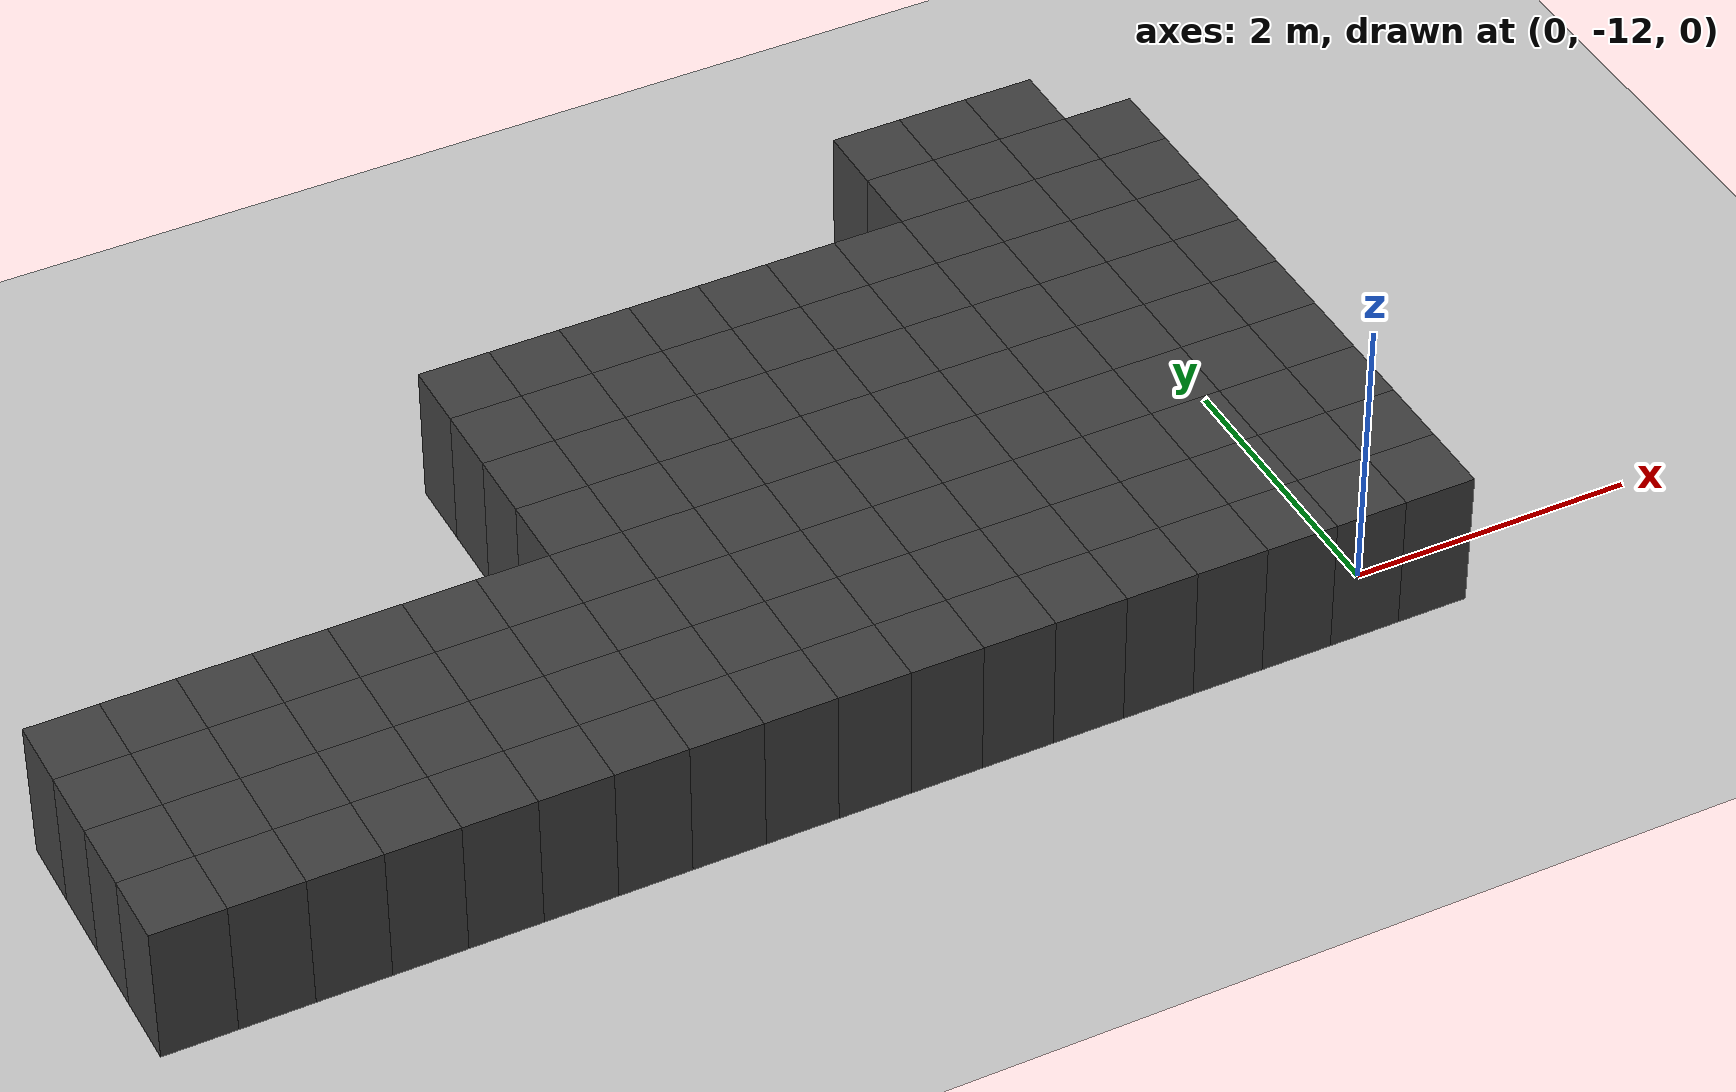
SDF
<sdf version="1.7">
 <world name="map_14668">
  <model name="ground_plane">
   <static>true</static>
   <link name="link">
    <collision name="collision">
     <geometry><plane><normal>0 0 1</normal><size>200 200</size></plane></geometry>
    </collision>
    <visual name="visual">
     <geometry><plane><normal>0 0 1</normal><size>200 200</size></plane></geometry>
     <material><ambient>0.8 0.8 0.8 1</ambient><diffuse>0.8 0.8 0.8 1</diffuse></material>
    </visual>
   </link>
  </model>
  <model name="maze_environment">
   <static>true</static>
   <link name="wall_1397">
    <pose>-1.250 -7.750 0.500 0 0 0</pose>
    <collision name="col"><geometry><box><size>0.5 0.5 1.0</size></box></geometry></collision>
    <visual name="vis">
     <geometry><box><size>0.5 0.5 1.0</size></box></geometry>
     <material><ambient>0.15 0.15 0.15 1</ambient><diffuse>0.25 0.25 0.25 1</diffuse></material>
    </visual>
   </link>
   <link name="wall_1398">
    <pose>-0.750 -7.750 0.500 0 0 0</pose>
    <collision name="col"><geometry><box><size>0.5 0.5 1.0</size></box></geometry></collision>
    <visual name="vis">
     <geometry><box><size>0.5 0.5 1.0</size></box></geometry>
     <material><ambient>0.15 0.15 0.15 1</ambient><diffuse>0.25 0.25 0.25 1</diffuse></material>
    </visual>
   </link>
   <link name="wall_1399">
    <pose>-0.250 -7.750 0.500 0 0 0</pose>
    <collision name="col"><geometry><box><size>0.5 0.5 1.0</size></box></geometry></collision>
    <visual name="vis">
     <geometry><box><size>0.5 0.5 1.0</size></box></geometry>
     <material><ambient>0.15 0.15 0.15 1</ambient><diffuse>0.25 0.25 0.25 1</diffuse></material>
    </visual>
   </link>
   <link name="wall_1422">
    <pose>-1.250 -8.250 0.500 0 0 0</pose>
    <collision name="col"><geometry><box><size>0.5 0.5 1.0</size></box></geometry></collision>
    <visual name="vis">
     <geometry><box><size>0.5 0.5 1.0</size></box></geometry>
     <material><ambient>0.15 0.15 0.15 1</ambient><diffuse>0.25 0.25 0.25 1</diffuse></material>
    </visual>
   </link>
   <link name="wall_1423">
    <pose>-0.750 -8.250 0.500 0 0 0</pose>
    <collision name="col"><geometry><box><size>0.5 0.5 1.0</size></box></geometry></collision>
    <visual name="vis">
     <geometry><box><size>0.5 0.5 1.0</size></box></geometry>
     <material><ambient>0.15 0.15 0.15 1</ambient><diffuse>0.25 0.25 0.25 1</diffuse></material>
    </visual>
   </link>
   <link name="wall_1424">
    <pose>-0.250 -8.250 0.500 0 0 0</pose>
    <collision name="col"><geometry><box><size>0.5 0.5 1.0</size></box></geometry></collision>
    <visual name="vis">
     <geometry><box><size>0.5 0.5 1.0</size></box></geometry>
     <material><ambient>0.15 0.15 0.15 1</ambient><diffuse>0.25 0.25 0.25 1</diffuse></material>
    </visual>
   </link>
   <link name="wall_1425">
    <pose>0.250 -8.250 0.500 0 0 0</pose>
    <collision name="col"><geometry><box><size>0.5 0.5 1.0</size></box></geometry></collision>
    <visual name="vis">
     <geometry><box><size>0.5 0.5 1.0</size></box></geometry>
     <material><ambient>0.15 0.15 0.15 1</ambient><diffuse>0.25 0.25 0.25 1</diffuse></material>
    </visual>
   </link>
   <link name="wall_1446">
    <pose>-4.750 -8.750 0.500 0 0 0</pose>
    <collision name="col"><geometry><box><size>0.5 0.5 1.0</size></box></geometry></collision>
    <visual name="vis">
     <geometry><box><size>0.5 0.5 1.0</size></box></geometry>
     <material><ambient>0.15 0.15 0.15 1</ambient><diffuse>0.25 0.25 0.25 1</diffuse></material>
    </visual>
   </link>
   <link name="wall_1447">
    <pose>-4.250 -8.750 0.500 0 0 0</pose>
    <collision name="col"><geometry><box><size>0.5 0.5 1.0</size></box></geometry></collision>
    <visual name="vis">
     <geometry><box><size>0.5 0.5 1.0</size></box></geometry>
     <material><ambient>0.15 0.15 0.15 1</ambient><diffuse>0.25 0.25 0.25 1</diffuse></material>
    </visual>
   </link>
   <link name="wall_1448">
    <pose>-3.750 -8.750 0.500 0 0 0</pose>
    <collision name="col"><geometry><box><size>0.5 0.5 1.0</size></box></geometry></collision>
    <visual name="vis">
     <geometry><box><size>0.5 0.5 1.0</size></box></geometry>
     <material><ambient>0.15 0.15 0.15 1</ambient><diffuse>0.25 0.25 0.25 1</diffuse></material>
    </visual>
   </link>
   <link name="wall_1449">
    <pose>-3.250 -8.750 0.500 0 0 0</pose>
    <collision name="col"><geometry><box><size>0.5 0.5 1.0</size></box></geometry></collision>
    <visual name="vis">
     <geometry><box><size>0.5 0.5 1.0</size></box></geometry>
     <material><ambient>0.15 0.15 0.15 1</ambient><diffuse>0.25 0.25 0.25 1</diffuse></material>
    </visual>
   </link>
   <link name="wall_1450">
    <pose>-2.750 -8.750 0.500 0 0 0</pose>
    <collision name="col"><geometry><box><size>0.5 0.5 1.0</size></box></geometry></collision>
    <visual name="vis">
     <geometry><box><size>0.5 0.5 1.0</size></box></geometry>
     <material><ambient>0.15 0.15 0.15 1</ambient><diffuse>0.25 0.25 0.25 1</diffuse></material>
    </visual>
   </link>
   <link name="wall_1451">
    <pose>-2.250 -8.750 0.500 0 0 0</pose>
    <collision name="col"><geometry><box><size>0.5 0.5 1.0</size></box></geometry></collision>
    <visual name="vis">
     <geometry><box><size>0.5 0.5 1.0</size></box></geometry>
     <material><ambient>0.15 0.15 0.15 1</ambient><diffuse>0.25 0.25 0.25 1</diffuse></material>
    </visual>
   </link>
   <link name="wall_1452">
    <pose>-1.750 -8.750 0.500 0 0 0</pose>
    <collision name="col"><geometry><box><size>0.5 0.5 1.0</size></box></geometry></collision>
    <visual name="vis">
     <geometry><box><size>0.5 0.5 1.0</size></box></geometry>
     <material><ambient>0.15 0.15 0.15 1</ambient><diffuse>0.25 0.25 0.25 1</diffuse></material>
    </visual>
   </link>
   <link name="wall_1453">
    <pose>-1.250 -8.750 0.500 0 0 0</pose>
    <collision name="col"><geometry><box><size>0.5 0.5 1.0</size></box></geometry></collision>
    <visual name="vis">
     <geometry><box><size>0.5 0.5 1.0</size></box></geometry>
     <material><ambient>0.15 0.15 0.15 1</ambient><diffuse>0.25 0.25 0.25 1</diffuse></material>
    </visual>
   </link>
   <link name="wall_1454">
    <pose>-0.750 -8.750 0.500 0 0 0</pose>
    <collision name="col"><geometry><box><size>0.5 0.5 1.0</size></box></geometry></collision>
    <visual name="vis">
     <geometry><box><size>0.5 0.5 1.0</size></box></geometry>
     <material><ambient>0.15 0.15 0.15 1</ambient><diffuse>0.25 0.25 0.25 1</diffuse></material>
    </visual>
   </link>
   <link name="wall_1455">
    <pose>-0.250 -8.750 0.500 0 0 0</pose>
    <collision name="col"><geometry><box><size>0.5 0.5 1.0</size></box></geometry></collision>
    <visual name="vis">
     <geometry><box><size>0.5 0.5 1.0</size></box></geometry>
     <material><ambient>0.15 0.15 0.15 1</ambient><diffuse>0.25 0.25 0.25 1</diffuse></material>
    </visual>
   </link>
   <link name="wall_1456">
    <pose>0.250 -8.750 0.500 0 0 0</pose>
    <collision name="col"><geometry><box><size>0.5 0.5 1.0</size></box></geometry></collision>
    <visual name="vis">
     <geometry><box><size>0.5 0.5 1.0</size></box></geometry>
     <material><ambient>0.15 0.15 0.15 1</ambient><diffuse>0.25 0.25 0.25 1</diffuse></material>
    </visual>
   </link>
   <link name="wall_1477">
    <pose>-4.750 -9.250 0.500 0 0 0</pose>
    <collision name="col"><geometry><box><size>0.5 0.5 1.0</size></box></geometry></collision>
    <visual name="vis">
     <geometry><box><size>0.5 0.5 1.0</size></box></geometry>
     <material><ambient>0.15 0.15 0.15 1</ambient><diffuse>0.25 0.25 0.25 1</diffuse></material>
    </visual>
   </link>
   <link name="wall_1478">
    <pose>-4.250 -9.250 0.500 0 0 0</pose>
    <collision name="col"><geometry><box><size>0.5 0.5 1.0</size></box></geometry></collision>
    <visual name="vis">
     <geometry><box><size>0.5 0.5 1.0</size></box></geometry>
     <material><ambient>0.15 0.15 0.15 1</ambient><diffuse>0.25 0.25 0.25 1</diffuse></material>
    </visual>
   </link>
   <link name="wall_1479">
    <pose>-3.750 -9.250 0.500 0 0 0</pose>
    <collision name="col"><geometry><box><size>0.5 0.5 1.0</size></box></geometry></collision>
    <visual name="vis">
     <geometry><box><size>0.5 0.5 1.0</size></box></geometry>
     <material><ambient>0.15 0.15 0.15 1</ambient><diffuse>0.25 0.25 0.25 1</diffuse></material>
    </visual>
   </link>
   <link name="wall_1480">
    <pose>-3.250 -9.250 0.500 0 0 0</pose>
    <collision name="col"><geometry><box><size>0.5 0.5 1.0</size></box></geometry></collision>
    <visual name="vis">
     <geometry><box><size>0.5 0.5 1.0</size></box></geometry>
     <material><ambient>0.15 0.15 0.15 1</ambient><diffuse>0.25 0.25 0.25 1</diffuse></material>
    </visual>
   </link>
   <link name="wall_1481">
    <pose>-2.750 -9.250 0.500 0 0 0</pose>
    <collision name="col"><geometry><box><size>0.5 0.5 1.0</size></box></geometry></collision>
    <visual name="vis">
     <geometry><box><size>0.5 0.5 1.0</size></box></geometry>
     <material><ambient>0.15 0.15 0.15 1</ambient><diffuse>0.25 0.25 0.25 1</diffuse></material>
    </visual>
   </link>
   <link name="wall_1482">
    <pose>-2.250 -9.250 0.500 0 0 0</pose>
    <collision name="col"><geometry><box><size>0.5 0.5 1.0</size></box></geometry></collision>
    <visual name="vis">
     <geometry><box><size>0.5 0.5 1.0</size></box></geometry>
     <material><ambient>0.15 0.15 0.15 1</ambient><diffuse>0.25 0.25 0.25 1</diffuse></material>
    </visual>
   </link>
   <link name="wall_1483">
    <pose>-1.750 -9.250 0.500 0 0 0</pose>
    <collision name="col"><geometry><box><size>0.5 0.5 1.0</size></box></geometry></collision>
    <visual name="vis">
     <geometry><box><size>0.5 0.5 1.0</size></box></geometry>
     <material><ambient>0.15 0.15 0.15 1</ambient><diffuse>0.25 0.25 0.25 1</diffuse></material>
    </visual>
   </link>
   <link name="wall_1484">
    <pose>-1.250 -9.250 0.500 0 0 0</pose>
    <collision name="col"><geometry><box><size>0.5 0.5 1.0</size></box></geometry></collision>
    <visual name="vis">
     <geometry><box><size>0.5 0.5 1.0</size></box></geometry>
     <material><ambient>0.15 0.15 0.15 1</ambient><diffuse>0.25 0.25 0.25 1</diffuse></material>
    </visual>
   </link>
   <link name="wall_1485">
    <pose>-0.750 -9.250 0.500 0 0 0</pose>
    <collision name="col"><geometry><box><size>0.5 0.5 1.0</size></box></geometry></collision>
    <visual name="vis">
     <geometry><box><size>0.5 0.5 1.0</size></box></geometry>
     <material><ambient>0.15 0.15 0.15 1</ambient><diffuse>0.25 0.25 0.25 1</diffuse></material>
    </visual>
   </link>
   <link name="wall_1486">
    <pose>-0.250 -9.250 0.500 0 0 0</pose>
    <collision name="col"><geometry><box><size>0.5 0.5 1.0</size></box></geometry></collision>
    <visual name="vis">
     <geometry><box><size>0.5 0.5 1.0</size></box></geometry>
     <material><ambient>0.15 0.15 0.15 1</ambient><diffuse>0.25 0.25 0.25 1</diffuse></material>
    </visual>
   </link>
   <link name="wall_1487">
    <pose>0.250 -9.250 0.500 0 0 0</pose>
    <collision name="col"><geometry><box><size>0.5 0.5 1.0</size></box></geometry></collision>
    <visual name="vis">
     <geometry><box><size>0.5 0.5 1.0</size></box></geometry>
     <material><ambient>0.15 0.15 0.15 1</ambient><diffuse>0.25 0.25 0.25 1</diffuse></material>
    </visual>
   </link>
   <link name="wall_1509">
    <pose>-4.750 -9.750 0.500 0 0 0</pose>
    <collision name="col"><geometry><box><size>0.5 0.5 1.0</size></box></geometry></collision>
    <visual name="vis">
     <geometry><box><size>0.5 0.5 1.0</size></box></geometry>
     <material><ambient>0.15 0.15 0.15 1</ambient><diffuse>0.25 0.25 0.25 1</diffuse></material>
    </visual>
   </link>
   <link name="wall_1510">
    <pose>-4.250 -9.750 0.500 0 0 0</pose>
    <collision name="col"><geometry><box><size>0.5 0.5 1.0</size></box></geometry></collision>
    <visual name="vis">
     <geometry><box><size>0.5 0.5 1.0</size></box></geometry>
     <material><ambient>0.15 0.15 0.15 1</ambient><diffuse>0.25 0.25 0.25 1</diffuse></material>
    </visual>
   </link>
   <link name="wall_1511">
    <pose>-3.750 -9.750 0.500 0 0 0</pose>
    <collision name="col"><geometry><box><size>0.5 0.5 1.0</size></box></geometry></collision>
    <visual name="vis">
     <geometry><box><size>0.5 0.5 1.0</size></box></geometry>
     <material><ambient>0.15 0.15 0.15 1</ambient><diffuse>0.25 0.25 0.25 1</diffuse></material>
    </visual>
   </link>
   <link name="wall_1512">
    <pose>-3.250 -9.750 0.500 0 0 0</pose>
    <collision name="col"><geometry><box><size>0.5 0.5 1.0</size></box></geometry></collision>
    <visual name="vis">
     <geometry><box><size>0.5 0.5 1.0</size></box></geometry>
     <material><ambient>0.15 0.15 0.15 1</ambient><diffuse>0.25 0.25 0.25 1</diffuse></material>
    </visual>
   </link>
   <link name="wall_1513">
    <pose>-2.750 -9.750 0.500 0 0 0</pose>
    <collision name="col"><geometry><box><size>0.5 0.5 1.0</size></box></geometry></collision>
    <visual name="vis">
     <geometry><box><size>0.5 0.5 1.0</size></box></geometry>
     <material><ambient>0.15 0.15 0.15 1</ambient><diffuse>0.25 0.25 0.25 1</diffuse></material>
    </visual>
   </link>
   <link name="wall_1514">
    <pose>-2.250 -9.750 0.500 0 0 0</pose>
    <collision name="col"><geometry><box><size>0.5 0.5 1.0</size></box></geometry></collision>
    <visual name="vis">
     <geometry><box><size>0.5 0.5 1.0</size></box></geometry>
     <material><ambient>0.15 0.15 0.15 1</ambient><diffuse>0.25 0.25 0.25 1</diffuse></material>
    </visual>
   </link>
   <link name="wall_1515">
    <pose>-1.750 -9.750 0.500 0 0 0</pose>
    <collision name="col"><geometry><box><size>0.5 0.5 1.0</size></box></geometry></collision>
    <visual name="vis">
     <geometry><box><size>0.5 0.5 1.0</size></box></geometry>
     <material><ambient>0.15 0.15 0.15 1</ambient><diffuse>0.25 0.25 0.25 1</diffuse></material>
    </visual>
   </link>
   <link name="wall_1516">
    <pose>-1.250 -9.750 0.500 0 0 0</pose>
    <collision name="col"><geometry><box><size>0.5 0.5 1.0</size></box></geometry></collision>
    <visual name="vis">
     <geometry><box><size>0.5 0.5 1.0</size></box></geometry>
     <material><ambient>0.15 0.15 0.15 1</ambient><diffuse>0.25 0.25 0.25 1</diffuse></material>
    </visual>
   </link>
   <link name="wall_1517">
    <pose>-0.750 -9.750 0.500 0 0 0</pose>
    <collision name="col"><geometry><box><size>0.5 0.5 1.0</size></box></geometry></collision>
    <visual name="vis">
     <geometry><box><size>0.5 0.5 1.0</size></box></geometry>
     <material><ambient>0.15 0.15 0.15 1</ambient><diffuse>0.25 0.25 0.25 1</diffuse></material>
    </visual>
   </link>
   <link name="wall_1518">
    <pose>-0.250 -9.750 0.500 0 0 0</pose>
    <collision name="col"><geometry><box><size>0.5 0.5 1.0</size></box></geometry></collision>
    <visual name="vis">
     <geometry><box><size>0.5 0.5 1.0</size></box></geometry>
     <material><ambient>0.15 0.15 0.15 1</ambient><diffuse>0.25 0.25 0.25 1</diffuse></material>
    </visual>
   </link>
   <link name="wall_1519">
    <pose>0.250 -9.750 0.500 0 0 0</pose>
    <collision name="col"><geometry><box><size>0.5 0.5 1.0</size></box></geometry></collision>
    <visual name="vis">
     <geometry><box><size>0.5 0.5 1.0</size></box></geometry>
     <material><ambient>0.15 0.15 0.15 1</ambient><diffuse>0.25 0.25 0.25 1</diffuse></material>
    </visual>
   </link>
   <link name="wall_1538">
    <pose>-4.750 -10.250 0.500 0 0 0</pose>
    <collision name="col"><geometry><box><size>0.5 0.5 1.0</size></box></geometry></collision>
    <visual name="vis">
     <geometry><box><size>0.5 0.5 1.0</size></box></geometry>
     <material><ambient>0.15 0.15 0.15 1</ambient><diffuse>0.25 0.25 0.25 1</diffuse></material>
    </visual>
   </link>
   <link name="wall_1539">
    <pose>-4.250 -10.250 0.500 0 0 0</pose>
    <collision name="col"><geometry><box><size>0.5 0.5 1.0</size></box></geometry></collision>
    <visual name="vis">
     <geometry><box><size>0.5 0.5 1.0</size></box></geometry>
     <material><ambient>0.15 0.15 0.15 1</ambient><diffuse>0.25 0.25 0.25 1</diffuse></material>
    </visual>
   </link>
   <link name="wall_1540">
    <pose>-3.750 -10.250 0.500 0 0 0</pose>
    <collision name="col"><geometry><box><size>0.5 0.5 1.0</size></box></geometry></collision>
    <visual name="vis">
     <geometry><box><size>0.5 0.5 1.0</size></box></geometry>
     <material><ambient>0.15 0.15 0.15 1</ambient><diffuse>0.25 0.25 0.25 1</diffuse></material>
    </visual>
   </link>
   <link name="wall_1541">
    <pose>-3.250 -10.250 0.500 0 0 0</pose>
    <collision name="col"><geometry><box><size>0.5 0.5 1.0</size></box></geometry></collision>
    <visual name="vis">
     <geometry><box><size>0.5 0.5 1.0</size></box></geometry>
     <material><ambient>0.15 0.15 0.15 1</ambient><diffuse>0.25 0.25 0.25 1</diffuse></material>
    </visual>
   </link>
   <link name="wall_1542">
    <pose>-2.750 -10.250 0.500 0 0 0</pose>
    <collision name="col"><geometry><box><size>0.5 0.5 1.0</size></box></geometry></collision>
    <visual name="vis">
     <geometry><box><size>0.5 0.5 1.0</size></box></geometry>
     <material><ambient>0.15 0.15 0.15 1</ambient><diffuse>0.25 0.25 0.25 1</diffuse></material>
    </visual>
   </link>
   <link name="wall_1543">
    <pose>-2.250 -10.250 0.500 0 0 0</pose>
    <collision name="col"><geometry><box><size>0.5 0.5 1.0</size></box></geometry></collision>
    <visual name="vis">
     <geometry><box><size>0.5 0.5 1.0</size></box></geometry>
     <material><ambient>0.15 0.15 0.15 1</ambient><diffuse>0.25 0.25 0.25 1</diffuse></material>
    </visual>
   </link>
   <link name="wall_1544">
    <pose>-1.750 -10.250 0.500 0 0 0</pose>
    <collision name="col"><geometry><box><size>0.5 0.5 1.0</size></box></geometry></collision>
    <visual name="vis">
     <geometry><box><size>0.5 0.5 1.0</size></box></geometry>
     <material><ambient>0.15 0.15 0.15 1</ambient><diffuse>0.25 0.25 0.25 1</diffuse></material>
    </visual>
   </link>
   <link name="wall_1545">
    <pose>-1.250 -10.250 0.500 0 0 0</pose>
    <collision name="col"><geometry><box><size>0.5 0.5 1.0</size></box></geometry></collision>
    <visual name="vis">
     <geometry><box><size>0.5 0.5 1.0</size></box></geometry>
     <material><ambient>0.15 0.15 0.15 1</ambient><diffuse>0.25 0.25 0.25 1</diffuse></material>
    </visual>
   </link>
   <link name="wall_1546">
    <pose>-0.750 -10.250 0.500 0 0 0</pose>
    <collision name="col"><geometry><box><size>0.5 0.5 1.0</size></box></geometry></collision>
    <visual name="vis">
     <geometry><box><size>0.5 0.5 1.0</size></box></geometry>
     <material><ambient>0.15 0.15 0.15 1</ambient><diffuse>0.25 0.25 0.25 1</diffuse></material>
    </visual>
   </link>
   <link name="wall_1547">
    <pose>-0.250 -10.250 0.500 0 0 0</pose>
    <collision name="col"><geometry><box><size>0.5 0.5 1.0</size></box></geometry></collision>
    <visual name="vis">
     <geometry><box><size>0.5 0.5 1.0</size></box></geometry>
     <material><ambient>0.15 0.15 0.15 1</ambient><diffuse>0.25 0.25 0.25 1</diffuse></material>
    </visual>
   </link>
   <link name="wall_1548">
    <pose>0.250 -10.250 0.500 0 0 0</pose>
    <collision name="col"><geometry><box><size>0.5 0.5 1.0</size></box></geometry></collision>
    <visual name="vis">
     <geometry><box><size>0.5 0.5 1.0</size></box></geometry>
     <material><ambient>0.15 0.15 0.15 1</ambient><diffuse>0.25 0.25 0.25 1</diffuse></material>
    </visual>
   </link>
   <link name="wall_1571">
    <pose>-8.250 -10.750 0.500 0 0 0</pose>
    <collision name="col"><geometry><box><size>0.5 0.5 1.0</size></box></geometry></collision>
    <visual name="vis">
     <geometry><box><size>0.5 0.5 1.0</size></box></geometry>
     <material><ambient>0.15 0.15 0.15 1</ambient><diffuse>0.25 0.25 0.25 1</diffuse></material>
    </visual>
   </link>
   <link name="wall_1572">
    <pose>-7.750 -10.750 0.500 0 0 0</pose>
    <collision name="col"><geometry><box><size>0.5 0.5 1.0</size></box></geometry></collision>
    <visual name="vis">
     <geometry><box><size>0.5 0.5 1.0</size></box></geometry>
     <material><ambient>0.15 0.15 0.15 1</ambient><diffuse>0.25 0.25 0.25 1</diffuse></material>
    </visual>
   </link>
   <link name="wall_1573">
    <pose>-7.250 -10.750 0.500 0 0 0</pose>
    <collision name="col"><geometry><box><size>0.5 0.5 1.0</size></box></geometry></collision>
    <visual name="vis">
     <geometry><box><size>0.5 0.5 1.0</size></box></geometry>
     <material><ambient>0.15 0.15 0.15 1</ambient><diffuse>0.25 0.25 0.25 1</diffuse></material>
    </visual>
   </link>
   <link name="wall_1574">
    <pose>-6.750 -10.750 0.500 0 0 0</pose>
    <collision name="col"><geometry><box><size>0.5 0.5 1.0</size></box></geometry></collision>
    <visual name="vis">
     <geometry><box><size>0.5 0.5 1.0</size></box></geometry>
     <material><ambient>0.15 0.15 0.15 1</ambient><diffuse>0.25 0.25 0.25 1</diffuse></material>
    </visual>
   </link>
   <link name="wall_1575">
    <pose>-6.250 -10.750 0.500 0 0 0</pose>
    <collision name="col"><geometry><box><size>0.5 0.5 1.0</size></box></geometry></collision>
    <visual name="vis">
     <geometry><box><size>0.5 0.5 1.0</size></box></geometry>
     <material><ambient>0.15 0.15 0.15 1</ambient><diffuse>0.25 0.25 0.25 1</diffuse></material>
    </visual>
   </link>
   <link name="wall_1576">
    <pose>-5.750 -10.750 0.500 0 0 0</pose>
    <collision name="col"><geometry><box><size>0.5 0.5 1.0</size></box></geometry></collision>
    <visual name="vis">
     <geometry><box><size>0.5 0.5 1.0</size></box></geometry>
     <material><ambient>0.15 0.15 0.15 1</ambient><diffuse>0.25 0.25 0.25 1</diffuse></material>
    </visual>
   </link>
   <link name="wall_1577">
    <pose>-5.250 -10.750 0.500 0 0 0</pose>
    <collision name="col"><geometry><box><size>0.5 0.5 1.0</size></box></geometry></collision>
    <visual name="vis">
     <geometry><box><size>0.5 0.5 1.0</size></box></geometry>
     <material><ambient>0.15 0.15 0.15 1</ambient><diffuse>0.25 0.25 0.25 1</diffuse></material>
    </visual>
   </link>
   <link name="wall_1578">
    <pose>-4.750 -10.750 0.500 0 0 0</pose>
    <collision name="col"><geometry><box><size>0.5 0.5 1.0</size></box></geometry></collision>
    <visual name="vis">
     <geometry><box><size>0.5 0.5 1.0</size></box></geometry>
     <material><ambient>0.15 0.15 0.15 1</ambient><diffuse>0.25 0.25 0.25 1</diffuse></material>
    </visual>
   </link>
   <link name="wall_1579">
    <pose>-4.250 -10.750 0.500 0 0 0</pose>
    <collision name="col"><geometry><box><size>0.5 0.5 1.0</size></box></geometry></collision>
    <visual name="vis">
     <geometry><box><size>0.5 0.5 1.0</size></box></geometry>
     <material><ambient>0.15 0.15 0.15 1</ambient><diffuse>0.25 0.25 0.25 1</diffuse></material>
    </visual>
   </link>
   <link name="wall_1580">
    <pose>-3.750 -10.750 0.500 0 0 0</pose>
    <collision name="col"><geometry><box><size>0.5 0.5 1.0</size></box></geometry></collision>
    <visual name="vis">
     <geometry><box><size>0.5 0.5 1.0</size></box></geometry>
     <material><ambient>0.15 0.15 0.15 1</ambient><diffuse>0.25 0.25 0.25 1</diffuse></material>
    </visual>
   </link>
   <link name="wall_1581">
    <pose>-3.250 -10.750 0.500 0 0 0</pose>
    <collision name="col"><geometry><box><size>0.5 0.5 1.0</size></box></geometry></collision>
    <visual name="vis">
     <geometry><box><size>0.5 0.5 1.0</size></box></geometry>
     <material><ambient>0.15 0.15 0.15 1</ambient><diffuse>0.25 0.25 0.25 1</diffuse></material>
    </visual>
   </link>
   <link name="wall_1582">
    <pose>-2.750 -10.750 0.500 0 0 0</pose>
    <collision name="col"><geometry><box><size>0.5 0.5 1.0</size></box></geometry></collision>
    <visual name="vis">
     <geometry><box><size>0.5 0.5 1.0</size></box></geometry>
     <material><ambient>0.15 0.15 0.15 1</ambient><diffuse>0.25 0.25 0.25 1</diffuse></material>
    </visual>
   </link>
   <link name="wall_1583">
    <pose>-2.250 -10.750 0.500 0 0 0</pose>
    <collision name="col"><geometry><box><size>0.5 0.5 1.0</size></box></geometry></collision>
    <visual name="vis">
     <geometry><box><size>0.5 0.5 1.0</size></box></geometry>
     <material><ambient>0.15 0.15 0.15 1</ambient><diffuse>0.25 0.25 0.25 1</diffuse></material>
    </visual>
   </link>
   <link name="wall_1584">
    <pose>-1.750 -10.750 0.500 0 0 0</pose>
    <collision name="col"><geometry><box><size>0.5 0.5 1.0</size></box></geometry></collision>
    <visual name="vis">
     <geometry><box><size>0.5 0.5 1.0</size></box></geometry>
     <material><ambient>0.15 0.15 0.15 1</ambient><diffuse>0.25 0.25 0.25 1</diffuse></material>
    </visual>
   </link>
   <link name="wall_1585">
    <pose>-1.250 -10.750 0.500 0 0 0</pose>
    <collision name="col"><geometry><box><size>0.5 0.5 1.0</size></box></geometry></collision>
    <visual name="vis">
     <geometry><box><size>0.5 0.5 1.0</size></box></geometry>
     <material><ambient>0.15 0.15 0.15 1</ambient><diffuse>0.25 0.25 0.25 1</diffuse></material>
    </visual>
   </link>
   <link name="wall_1586">
    <pose>-0.750 -10.750 0.500 0 0 0</pose>
    <collision name="col"><geometry><box><size>0.5 0.5 1.0</size></box></geometry></collision>
    <visual name="vis">
     <geometry><box><size>0.5 0.5 1.0</size></box></geometry>
     <material><ambient>0.15 0.15 0.15 1</ambient><diffuse>0.25 0.25 0.25 1</diffuse></material>
    </visual>
   </link>
   <link name="wall_1587">
    <pose>-0.250 -10.750 0.500 0 0 0</pose>
    <collision name="col"><geometry><box><size>0.5 0.5 1.0</size></box></geometry></collision>
    <visual name="vis">
     <geometry><box><size>0.5 0.5 1.0</size></box></geometry>
     <material><ambient>0.15 0.15 0.15 1</ambient><diffuse>0.25 0.25 0.25 1</diffuse></material>
    </visual>
   </link>
   <link name="wall_1588">
    <pose>0.250 -10.750 0.500 0 0 0</pose>
    <collision name="col"><geometry><box><size>0.5 0.5 1.0</size></box></geometry></collision>
    <visual name="vis">
     <geometry><box><size>0.5 0.5 1.0</size></box></geometry>
     <material><ambient>0.15 0.15 0.15 1</ambient><diffuse>0.25 0.25 0.25 1</diffuse></material>
    </visual>
   </link>
   <link name="wall_1611">
    <pose>-8.250 -11.250 0.500 0 0 0</pose>
    <collision name="col"><geometry><box><size>0.5 0.5 1.0</size></box></geometry></collision>
    <visual name="vis">
     <geometry><box><size>0.5 0.5 1.0</size></box></geometry>
     <material><ambient>0.15 0.15 0.15 1</ambient><diffuse>0.25 0.25 0.25 1</diffuse></material>
    </visual>
   </link>
   <link name="wall_1612">
    <pose>-7.750 -11.250 0.500 0 0 0</pose>
    <collision name="col"><geometry><box><size>0.5 0.5 1.0</size></box></geometry></collision>
    <visual name="vis">
     <geometry><box><size>0.5 0.5 1.0</size></box></geometry>
     <material><ambient>0.15 0.15 0.15 1</ambient><diffuse>0.25 0.25 0.25 1</diffuse></material>
    </visual>
   </link>
   <link name="wall_1613">
    <pose>-7.250 -11.250 0.500 0 0 0</pose>
    <collision name="col"><geometry><box><size>0.5 0.5 1.0</size></box></geometry></collision>
    <visual name="vis">
     <geometry><box><size>0.5 0.5 1.0</size></box></geometry>
     <material><ambient>0.15 0.15 0.15 1</ambient><diffuse>0.25 0.25 0.25 1</diffuse></material>
    </visual>
   </link>
   <link name="wall_1614">
    <pose>-6.750 -11.250 0.500 0 0 0</pose>
    <collision name="col"><geometry><box><size>0.5 0.5 1.0</size></box></geometry></collision>
    <visual name="vis">
     <geometry><box><size>0.5 0.5 1.0</size></box></geometry>
     <material><ambient>0.15 0.15 0.15 1</ambient><diffuse>0.25 0.25 0.25 1</diffuse></material>
    </visual>
   </link>
   <link name="wall_1615">
    <pose>-6.250 -11.250 0.500 0 0 0</pose>
    <collision name="col"><geometry><box><size>0.5 0.5 1.0</size></box></geometry></collision>
    <visual name="vis">
     <geometry><box><size>0.5 0.5 1.0</size></box></geometry>
     <material><ambient>0.15 0.15 0.15 1</ambient><diffuse>0.25 0.25 0.25 1</diffuse></material>
    </visual>
   </link>
   <link name="wall_1616">
    <pose>-5.750 -11.250 0.500 0 0 0</pose>
    <collision name="col"><geometry><box><size>0.5 0.5 1.0</size></box></geometry></collision>
    <visual name="vis">
     <geometry><box><size>0.5 0.5 1.0</size></box></geometry>
     <material><ambient>0.15 0.15 0.15 1</ambient><diffuse>0.25 0.25 0.25 1</diffuse></material>
    </visual>
   </link>
   <link name="wall_1617">
    <pose>-5.250 -11.250 0.500 0 0 0</pose>
    <collision name="col"><geometry><box><size>0.5 0.5 1.0</size></box></geometry></collision>
    <visual name="vis">
     <geometry><box><size>0.5 0.5 1.0</size></box></geometry>
     <material><ambient>0.15 0.15 0.15 1</ambient><diffuse>0.25 0.25 0.25 1</diffuse></material>
    </visual>
   </link>
   <link name="wall_1618">
    <pose>-4.750 -11.250 0.500 0 0 0</pose>
    <collision name="col"><geometry><box><size>0.5 0.5 1.0</size></box></geometry></collision>
    <visual name="vis">
     <geometry><box><size>0.5 0.5 1.0</size></box></geometry>
     <material><ambient>0.15 0.15 0.15 1</ambient><diffuse>0.25 0.25 0.25 1</diffuse></material>
    </visual>
   </link>
   <link name="wall_1619">
    <pose>-4.250 -11.250 0.500 0 0 0</pose>
    <collision name="col"><geometry><box><size>0.5 0.5 1.0</size></box></geometry></collision>
    <visual name="vis">
     <geometry><box><size>0.5 0.5 1.0</size></box></geometry>
     <material><ambient>0.15 0.15 0.15 1</ambient><diffuse>0.25 0.25 0.25 1</diffuse></material>
    </visual>
   </link>
   <link name="wall_1620">
    <pose>-3.750 -11.250 0.500 0 0 0</pose>
    <collision name="col"><geometry><box><size>0.5 0.5 1.0</size></box></geometry></collision>
    <visual name="vis">
     <geometry><box><size>0.5 0.5 1.0</size></box></geometry>
     <material><ambient>0.15 0.15 0.15 1</ambient><diffuse>0.25 0.25 0.25 1</diffuse></material>
    </visual>
   </link>
   <link name="wall_1621">
    <pose>-3.250 -11.250 0.500 0 0 0</pose>
    <collision name="col"><geometry><box><size>0.5 0.5 1.0</size></box></geometry></collision>
    <visual name="vis">
     <geometry><box><size>0.5 0.5 1.0</size></box></geometry>
     <material><ambient>0.15 0.15 0.15 1</ambient><diffuse>0.25 0.25 0.25 1</diffuse></material>
    </visual>
   </link>
   <link name="wall_1622">
    <pose>-2.750 -11.250 0.500 0 0 0</pose>
    <collision name="col"><geometry><box><size>0.5 0.5 1.0</size></box></geometry></collision>
    <visual name="vis">
     <geometry><box><size>0.5 0.5 1.0</size></box></geometry>
     <material><ambient>0.15 0.15 0.15 1</ambient><diffuse>0.25 0.25 0.25 1</diffuse></material>
    </visual>
   </link>
   <link name="wall_1623">
    <pose>-2.250 -11.250 0.500 0 0 0</pose>
    <collision name="col"><geometry><box><size>0.5 0.5 1.0</size></box></geometry></collision>
    <visual name="vis">
     <geometry><box><size>0.5 0.5 1.0</size></box></geometry>
     <material><ambient>0.15 0.15 0.15 1</ambient><diffuse>0.25 0.25 0.25 1</diffuse></material>
    </visual>
   </link>
   <link name="wall_1624">
    <pose>-1.750 -11.250 0.500 0 0 0</pose>
    <collision name="col"><geometry><box><size>0.5 0.5 1.0</size></box></geometry></collision>
    <visual name="vis">
     <geometry><box><size>0.5 0.5 1.0</size></box></geometry>
     <material><ambient>0.15 0.15 0.15 1</ambient><diffuse>0.25 0.25 0.25 1</diffuse></material>
    </visual>
   </link>
   <link name="wall_1625">
    <pose>-1.250 -11.250 0.500 0 0 0</pose>
    <collision name="col"><geometry><box><size>0.5 0.5 1.0</size></box></geometry></collision>
    <visual name="vis">
     <geometry><box><size>0.5 0.5 1.0</size></box></geometry>
     <material><ambient>0.15 0.15 0.15 1</ambient><diffuse>0.25 0.25 0.25 1</diffuse></material>
    </visual>
   </link>
   <link name="wall_1626">
    <pose>-0.750 -11.250 0.500 0 0 0</pose>
    <collision name="col"><geometry><box><size>0.5 0.5 1.0</size></box></geometry></collision>
    <visual name="vis">
     <geometry><box><size>0.5 0.5 1.0</size></box></geometry>
     <material><ambient>0.15 0.15 0.15 1</ambient><diffuse>0.25 0.25 0.25 1</diffuse></material>
    </visual>
   </link>
   <link name="wall_1627">
    <pose>-0.250 -11.250 0.500 0 0 0</pose>
    <collision name="col"><geometry><box><size>0.5 0.5 1.0</size></box></geometry></collision>
    <visual name="vis">
     <geometry><box><size>0.5 0.5 1.0</size></box></geometry>
     <material><ambient>0.15 0.15 0.15 1</ambient><diffuse>0.25 0.25 0.25 1</diffuse></material>
    </visual>
   </link>
   <link name="wall_1628">
    <pose>0.250 -11.250 0.500 0 0 0</pose>
    <collision name="col"><geometry><box><size>0.5 0.5 1.0</size></box></geometry></collision>
    <visual name="vis">
     <geometry><box><size>0.5 0.5 1.0</size></box></geometry>
     <material><ambient>0.15 0.15 0.15 1</ambient><diffuse>0.25 0.25 0.25 1</diffuse></material>
    </visual>
   </link>
   <link name="wall_1646">
    <pose>-8.250 -11.750 0.500 0 0 0</pose>
    <collision name="col"><geometry><box><size>0.5 0.5 1.0</size></box></geometry></collision>
    <visual name="vis">
     <geometry><box><size>0.5 0.5 1.0</size></box></geometry>
     <material><ambient>0.15 0.15 0.15 1</ambient><diffuse>0.25 0.25 0.25 1</diffuse></material>
    </visual>
   </link>
   <link name="wall_1647">
    <pose>-7.750 -11.750 0.500 0 0 0</pose>
    <collision name="col"><geometry><box><size>0.5 0.5 1.0</size></box></geometry></collision>
    <visual name="vis">
     <geometry><box><size>0.5 0.5 1.0</size></box></geometry>
     <material><ambient>0.15 0.15 0.15 1</ambient><diffuse>0.25 0.25 0.25 1</diffuse></material>
    </visual>
   </link>
   <link name="wall_1648">
    <pose>-7.250 -11.750 0.500 0 0 0</pose>
    <collision name="col"><geometry><box><size>0.5 0.5 1.0</size></box></geometry></collision>
    <visual name="vis">
     <geometry><box><size>0.5 0.5 1.0</size></box></geometry>
     <material><ambient>0.15 0.15 0.15 1</ambient><diffuse>0.25 0.25 0.25 1</diffuse></material>
    </visual>
   </link>
   <link name="wall_1649">
    <pose>-6.750 -11.750 0.500 0 0 0</pose>
    <collision name="col"><geometry><box><size>0.5 0.5 1.0</size></box></geometry></collision>
    <visual name="vis">
     <geometry><box><size>0.5 0.5 1.0</size></box></geometry>
     <material><ambient>0.15 0.15 0.15 1</ambient><diffuse>0.25 0.25 0.25 1</diffuse></material>
    </visual>
   </link>
   <link name="wall_1650">
    <pose>-6.250 -11.750 0.500 0 0 0</pose>
    <collision name="col"><geometry><box><size>0.5 0.5 1.0</size></box></geometry></collision>
    <visual name="vis">
     <geometry><box><size>0.5 0.5 1.0</size></box></geometry>
     <material><ambient>0.15 0.15 0.15 1</ambient><diffuse>0.25 0.25 0.25 1</diffuse></material>
    </visual>
   </link>
   <link name="wall_1651">
    <pose>-5.750 -11.750 0.500 0 0 0</pose>
    <collision name="col"><geometry><box><size>0.5 0.5 1.0</size></box></geometry></collision>
    <visual name="vis">
     <geometry><box><size>0.5 0.5 1.0</size></box></geometry>
     <material><ambient>0.15 0.15 0.15 1</ambient><diffuse>0.25 0.25 0.25 1</diffuse></material>
    </visual>
   </link>
   <link name="wall_1652">
    <pose>-5.250 -11.750 0.500 0 0 0</pose>
    <collision name="col"><geometry><box><size>0.5 0.5 1.0</size></box></geometry></collision>
    <visual name="vis">
     <geometry><box><size>0.5 0.5 1.0</size></box></geometry>
     <material><ambient>0.15 0.15 0.15 1</ambient><diffuse>0.25 0.25 0.25 1</diffuse></material>
    </visual>
   </link>
   <link name="wall_1653">
    <pose>-4.750 -11.750 0.500 0 0 0</pose>
    <collision name="col"><geometry><box><size>0.5 0.5 1.0</size></box></geometry></collision>
    <visual name="vis">
     <geometry><box><size>0.5 0.5 1.0</size></box></geometry>
     <material><ambient>0.15 0.15 0.15 1</ambient><diffuse>0.25 0.25 0.25 1</diffuse></material>
    </visual>
   </link>
   <link name="wall_1654">
    <pose>-4.250 -11.750 0.500 0 0 0</pose>
    <collision name="col"><geometry><box><size>0.5 0.5 1.0</size></box></geometry></collision>
    <visual name="vis">
     <geometry><box><size>0.5 0.5 1.0</size></box></geometry>
     <material><ambient>0.15 0.15 0.15 1</ambient><diffuse>0.25 0.25 0.25 1</diffuse></material>
    </visual>
   </link>
   <link name="wall_1655">
    <pose>-3.750 -11.750 0.500 0 0 0</pose>
    <collision name="col"><geometry><box><size>0.5 0.5 1.0</size></box></geometry></collision>
    <visual name="vis">
     <geometry><box><size>0.5 0.5 1.0</size></box></geometry>
     <material><ambient>0.15 0.15 0.15 1</ambient><diffuse>0.25 0.25 0.25 1</diffuse></material>
    </visual>
   </link>
   <link name="wall_1656">
    <pose>-3.250 -11.750 0.500 0 0 0</pose>
    <collision name="col"><geometry><box><size>0.5 0.5 1.0</size></box></geometry></collision>
    <visual name="vis">
     <geometry><box><size>0.5 0.5 1.0</size></box></geometry>
     <material><ambient>0.15 0.15 0.15 1</ambient><diffuse>0.25 0.25 0.25 1</diffuse></material>
    </visual>
   </link>
   <link name="wall_1657">
    <pose>-2.750 -11.750 0.500 0 0 0</pose>
    <collision name="col"><geometry><box><size>0.5 0.5 1.0</size></box></geometry></collision>
    <visual name="vis">
     <geometry><box><size>0.5 0.5 1.0</size></box></geometry>
     <material><ambient>0.15 0.15 0.15 1</ambient><diffuse>0.25 0.25 0.25 1</diffuse></material>
    </visual>
   </link>
   <link name="wall_1658">
    <pose>-2.250 -11.750 0.500 0 0 0</pose>
    <collision name="col"><geometry><box><size>0.5 0.5 1.0</size></box></geometry></collision>
    <visual name="vis">
     <geometry><box><size>0.5 0.5 1.0</size></box></geometry>
     <material><ambient>0.15 0.15 0.15 1</ambient><diffuse>0.25 0.25 0.25 1</diffuse></material>
    </visual>
   </link>
   <link name="wall_1659">
    <pose>-1.750 -11.750 0.500 0 0 0</pose>
    <collision name="col"><geometry><box><size>0.5 0.5 1.0</size></box></geometry></collision>
    <visual name="vis">
     <geometry><box><size>0.5 0.5 1.0</size></box></geometry>
     <material><ambient>0.15 0.15 0.15 1</ambient><diffuse>0.25 0.25 0.25 1</diffuse></material>
    </visual>
   </link>
   <link name="wall_1660">
    <pose>-1.250 -11.750 0.500 0 0 0</pose>
    <collision name="col"><geometry><box><size>0.5 0.5 1.0</size></box></geometry></collision>
    <visual name="vis">
     <geometry><box><size>0.5 0.5 1.0</size></box></geometry>
     <material><ambient>0.15 0.15 0.15 1</ambient><diffuse>0.25 0.25 0.25 1</diffuse></material>
    </visual>
   </link>
   <link name="wall_1661">
    <pose>-0.750 -11.750 0.500 0 0 0</pose>
    <collision name="col"><geometry><box><size>0.5 0.5 1.0</size></box></geometry></collision>
    <visual name="vis">
     <geometry><box><size>0.5 0.5 1.0</size></box></geometry>
     <material><ambient>0.15 0.15 0.15 1</ambient><diffuse>0.25 0.25 0.25 1</diffuse></material>
    </visual>
   </link>
   <link name="wall_1662">
    <pose>-0.250 -11.750 0.500 0 0 0</pose>
    <collision name="col"><geometry><box><size>0.5 0.5 1.0</size></box></geometry></collision>
    <visual name="vis">
     <geometry><box><size>0.5 0.5 1.0</size></box></geometry>
     <material><ambient>0.15 0.15 0.15 1</ambient><diffuse>0.25 0.25 0.25 1</diffuse></material>
    </visual>
   </link>
   <link name="wall_1663">
    <pose>0.250 -11.750 0.500 0 0 0</pose>
    <collision name="col"><geometry><box><size>0.5 0.5 1.0</size></box></geometry></collision>
    <visual name="vis">
     <geometry><box><size>0.5 0.5 1.0</size></box></geometry>
     <material><ambient>0.15 0.15 0.15 1</ambient><diffuse>0.25 0.25 0.25 1</diffuse></material>
    </visual>
   </link>
   <link name="wall_1693">
    <pose>-8.250 -12.250 0.500 0 0 0</pose>
    <collision name="col"><geometry><box><size>0.5 0.5 1.0</size></box></geometry></collision>
    <visual name="vis">
     <geometry><box><size>0.5 0.5 1.0</size></box></geometry>
     <material><ambient>0.15 0.15 0.15 1</ambient><diffuse>0.25 0.25 0.25 1</diffuse></material>
    </visual>
   </link>
   <link name="wall_1694">
    <pose>-7.750 -12.250 0.500 0 0 0</pose>
    <collision name="col"><geometry><box><size>0.5 0.5 1.0</size></box></geometry></collision>
    <visual name="vis">
     <geometry><box><size>0.5 0.5 1.0</size></box></geometry>
     <material><ambient>0.15 0.15 0.15 1</ambient><diffuse>0.25 0.25 0.25 1</diffuse></material>
    </visual>
   </link>
   <link name="wall_1695">
    <pose>-7.250 -12.250 0.500 0 0 0</pose>
    <collision name="col"><geometry><box><size>0.5 0.5 1.0</size></box></geometry></collision>
    <visual name="vis">
     <geometry><box><size>0.5 0.5 1.0</size></box></geometry>
     <material><ambient>0.15 0.15 0.15 1</ambient><diffuse>0.25 0.25 0.25 1</diffuse></material>
    </visual>
   </link>
   <link name="wall_1696">
    <pose>-6.750 -12.250 0.500 0 0 0</pose>
    <collision name="col"><geometry><box><size>0.5 0.5 1.0</size></box></geometry></collision>
    <visual name="vis">
     <geometry><box><size>0.5 0.5 1.0</size></box></geometry>
     <material><ambient>0.15 0.15 0.15 1</ambient><diffuse>0.25 0.25 0.25 1</diffuse></material>
    </visual>
   </link>
   <link name="wall_1697">
    <pose>-6.250 -12.250 0.500 0 0 0</pose>
    <collision name="col"><geometry><box><size>0.5 0.5 1.0</size></box></geometry></collision>
    <visual name="vis">
     <geometry><box><size>0.5 0.5 1.0</size></box></geometry>
     <material><ambient>0.15 0.15 0.15 1</ambient><diffuse>0.25 0.25 0.25 1</diffuse></material>
    </visual>
   </link>
   <link name="wall_1698">
    <pose>-5.750 -12.250 0.500 0 0 0</pose>
    <collision name="col"><geometry><box><size>0.5 0.5 1.0</size></box></geometry></collision>
    <visual name="vis">
     <geometry><box><size>0.5 0.5 1.0</size></box></geometry>
     <material><ambient>0.15 0.15 0.15 1</ambient><diffuse>0.25 0.25 0.25 1</diffuse></material>
    </visual>
   </link>
   <link name="wall_1699">
    <pose>-5.250 -12.250 0.500 0 0 0</pose>
    <collision name="col"><geometry><box><size>0.5 0.5 1.0</size></box></geometry></collision>
    <visual name="vis">
     <geometry><box><size>0.5 0.5 1.0</size></box></geometry>
     <material><ambient>0.15 0.15 0.15 1</ambient><diffuse>0.25 0.25 0.25 1</diffuse></material>
    </visual>
   </link>
   <link name="wall_1700">
    <pose>-4.750 -12.250 0.500 0 0 0</pose>
    <collision name="col"><geometry><box><size>0.5 0.5 1.0</size></box></geometry></collision>
    <visual name="vis">
     <geometry><box><size>0.5 0.5 1.0</size></box></geometry>
     <material><ambient>0.15 0.15 0.15 1</ambient><diffuse>0.25 0.25 0.25 1</diffuse></material>
    </visual>
   </link>
   <link name="wall_1701">
    <pose>-4.250 -12.250 0.500 0 0 0</pose>
    <collision name="col"><geometry><box><size>0.5 0.5 1.0</size></box></geometry></collision>
    <visual name="vis">
     <geometry><box><size>0.5 0.5 1.0</size></box></geometry>
     <material><ambient>0.15 0.15 0.15 1</ambient><diffuse>0.25 0.25 0.25 1</diffuse></material>
    </visual>
   </link>
   <link name="wall_1702">
    <pose>-3.750 -12.250 0.500 0 0 0</pose>
    <collision name="col"><geometry><box><size>0.5 0.5 1.0</size></box></geometry></collision>
    <visual name="vis">
     <geometry><box><size>0.5 0.5 1.0</size></box></geometry>
     <material><ambient>0.15 0.15 0.15 1</ambient><diffuse>0.25 0.25 0.25 1</diffuse></material>
    </visual>
   </link>
   <link name="wall_1703">
    <pose>-3.250 -12.250 0.500 0 0 0</pose>
    <collision name="col"><geometry><box><size>0.5 0.5 1.0</size></box></geometry></collision>
    <visual name="vis">
     <geometry><box><size>0.5 0.5 1.0</size></box></geometry>
     <material><ambient>0.15 0.15 0.15 1</ambient><diffuse>0.25 0.25 0.25 1</diffuse></material>
    </visual>
   </link>
   <link name="wall_1704">
    <pose>-2.750 -12.250 0.500 0 0 0</pose>
    <collision name="col"><geometry><box><size>0.5 0.5 1.0</size></box></geometry></collision>
    <visual name="vis">
     <geometry><box><size>0.5 0.5 1.0</size></box></geometry>
     <material><ambient>0.15 0.15 0.15 1</ambient><diffuse>0.25 0.25 0.25 1</diffuse></material>
    </visual>
   </link>
   <link name="wall_1705">
    <pose>-2.250 -12.250 0.500 0 0 0</pose>
    <collision name="col"><geometry><box><size>0.5 0.5 1.0</size></box></geometry></collision>
    <visual name="vis">
     <geometry><box><size>0.5 0.5 1.0</size></box></geometry>
     <material><ambient>0.15 0.15 0.15 1</ambient><diffuse>0.25 0.25 0.25 1</diffuse></material>
    </visual>
   </link>
   <link name="wall_1706">
    <pose>-1.750 -12.250 0.500 0 0 0</pose>
    <collision name="col"><geometry><box><size>0.5 0.5 1.0</size></box></geometry></collision>
    <visual name="vis">
     <geometry><box><size>0.5 0.5 1.0</size></box></geometry>
     <material><ambient>0.15 0.15 0.15 1</ambient><diffuse>0.25 0.25 0.25 1</diffuse></material>
    </visual>
   </link>
   <link name="wall_1707">
    <pose>-1.250 -12.250 0.500 0 0 0</pose>
    <collision name="col"><geometry><box><size>0.5 0.5 1.0</size></box></geometry></collision>
    <visual name="vis">
     <geometry><box><size>0.5 0.5 1.0</size></box></geometry>
     <material><ambient>0.15 0.15 0.15 1</ambient><diffuse>0.25 0.25 0.25 1</diffuse></material>
    </visual>
   </link>
   <link name="wall_1708">
    <pose>-0.750 -12.250 0.500 0 0 0</pose>
    <collision name="col"><geometry><box><size>0.5 0.5 1.0</size></box></geometry></collision>
    <visual name="vis">
     <geometry><box><size>0.5 0.5 1.0</size></box></geometry>
     <material><ambient>0.15 0.15 0.15 1</ambient><diffuse>0.25 0.25 0.25 1</diffuse></material>
    </visual>
   </link>
   <link name="wall_1709">
    <pose>-0.250 -12.250 0.500 0 0 0</pose>
    <collision name="col"><geometry><box><size>0.5 0.5 1.0</size></box></geometry></collision>
    <visual name="vis">
     <geometry><box><size>0.5 0.5 1.0</size></box></geometry>
     <material><ambient>0.15 0.15 0.15 1</ambient><diffuse>0.25 0.25 0.25 1</diffuse></material>
    </visual>
   </link>
   <link name="wall_1710">
    <pose>0.250 -12.250 0.500 0 0 0</pose>
    <collision name="col"><geometry><box><size>0.5 0.5 1.0</size></box></geometry></collision>
    <visual name="vis">
     <geometry><box><size>0.5 0.5 1.0</size></box></geometry>
     <material><ambient>0.15 0.15 0.15 1</ambient><diffuse>0.25 0.25 0.25 1</diffuse></material>
    </visual>
   </link>
  </model>
 </world>
</sdf>
